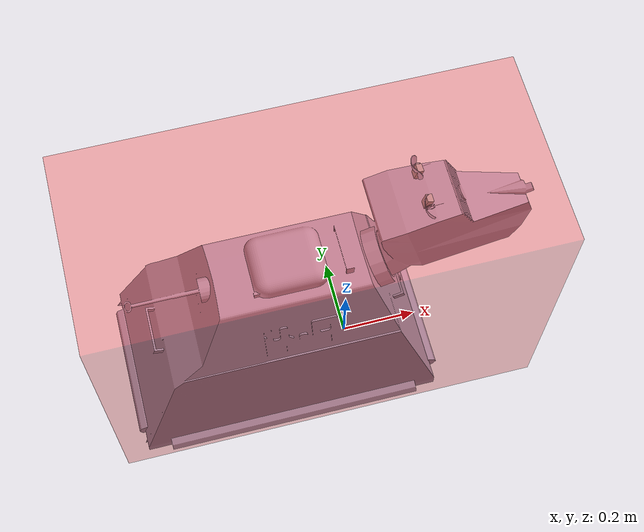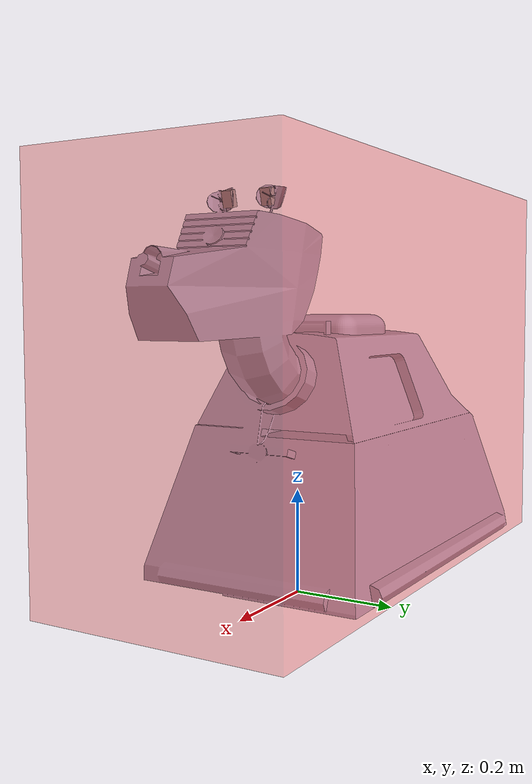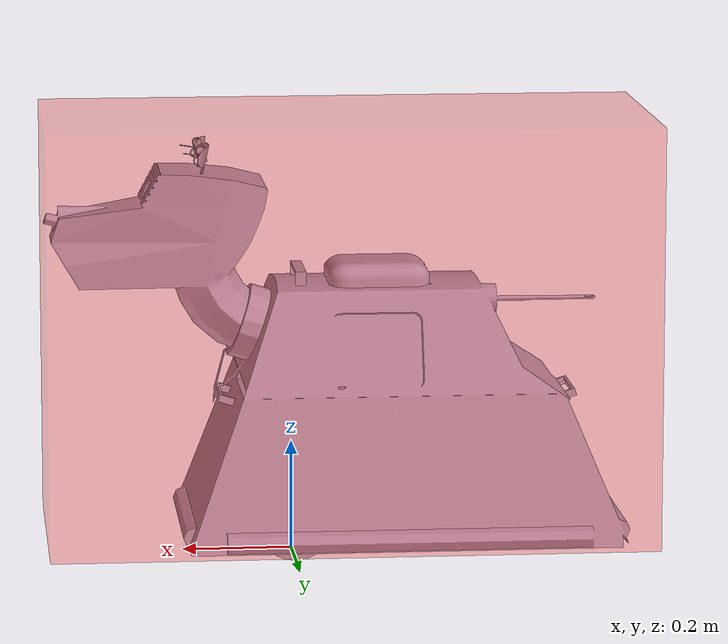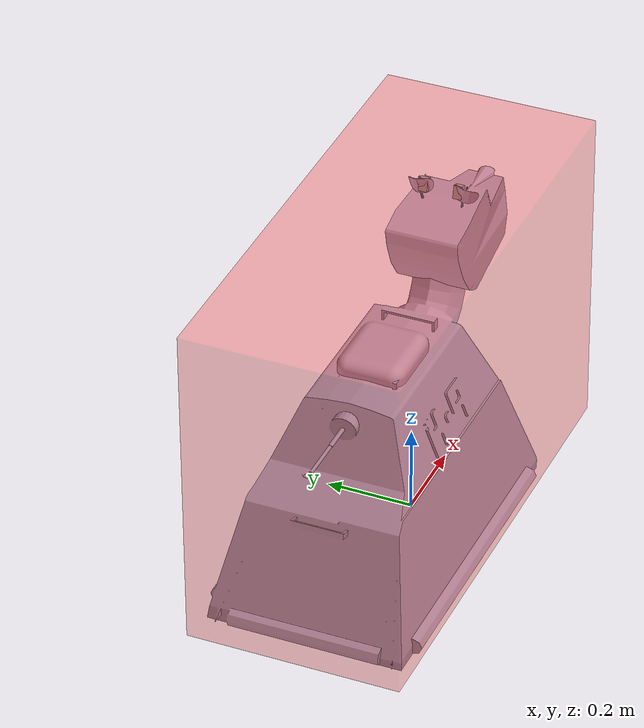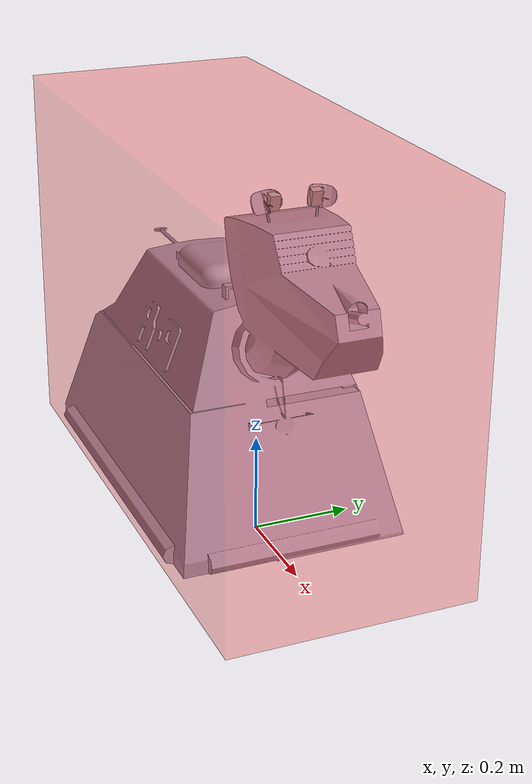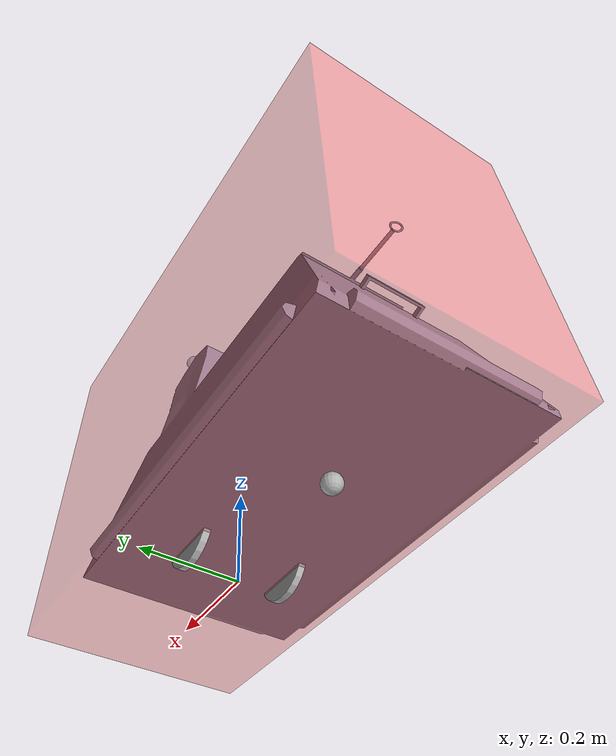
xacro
<?xml version="1.0" ?>
<robot name="k9_robot" xmlns:xacro="http://ros.org/wiki/xacro">

  <!--COLOURS-->
  <material name="K9 grey">
    <color rgba="0.5 0.5 1.0 0.3" />
  </material>

    <material name="K9 mesh">
    <color rgba="0.7 0.7 0.8 1.0" />
  </material>

  <material name="wheel grey">
    <color rgba="0.7 0.7 0.7 1.0" />
  </material>

  <material name="collision red">
    <color rgba="1.0 0.1 0.1 0.3" />
  </material>

  <!-- Define intertial property macros  -->
  <xacro:macro name="box_inertia" params="m x y z o_xyz o_rpy">
      <inertial>
          <mass value="${m}" />
          <origin xyz="${o_xyz}" rpy="${o_rpy}" />
          <inertia ixx="${(m/12) * (y*y + z*z)}" ixy="0" ixz="0"
                    iyy="${(m/12) * (x*x + z*z)}" iyz="0"
                    izz="${(m/12) * (x*x + y*y)}" />
      </inertial>
  </xacro:macro>

  <xacro:macro name="cylinder_inertia" params="m r l o_xyz o_rpy">
      <inertial>
          <mass value="${m}" />
          <origin xyz="${o_xyz}" rpy="${o_rpy}" />
          <inertia ixx="${(m/12) * (3*r*r + l*l)}" ixy="0" ixz="0"
                    iyy="${(m/12) * (3*r*r + l*l)}" iyz="0"
                    izz="${(m/2) * (r*r)}" />
      </inertial>
  </xacro:macro>

  <xacro:macro name="sphere_inertia" params="m r o_xyz o_rpy">
      <inertial>
          <mass value="${m}" />
          <origin xyz="${o_xyz}" rpy="${o_rpy}" />
          <inertia ixx="${(2/5) * m * r * r}" ixy="0" ixz="0"
                    iyy="${(2/5) * m * r * r}" iyz="0"
                    izz="${(2/5) * m * r * r}" />
      </inertial>
  </xacro:macro>

  <!--BASE-->
  <xacro:property name="base_width" value="0.49"/>
  <xacro:property name="base_length" value="1.1"/>
  <xacro:property name="base_height" value="0.77"/>
  <xacro:property name="base_x_offset" value="-0.1"/>
  <xacro:property name="base_clearance" value="0.035"/>

    <link name="base_link">
    <visual>
      <geometry>
        <box size="${base_length} ${base_width} ${base_height}"/>
      </geometry>
      <origin xyz="${base_x_offset} 0 ${base_clearance+(base_height/2)}" rpy="0 0 ${pi}"/>
      <material name="collision red"/>
    </visual>
    <collision>
      <origin xyz="-0.2 0.0 0.297" rpy="0.0 0.0 0.0"/>
      <geometry>
        <box size="0.89 ${base_width} 0.52"/>
      </geometry>
    </collision>
    <collision>
      <origin xyz="0.23 0.0 0.55" rpy="0.0 0.0 0.0"/>
      <geometry>
        <box size="0.43 0.18 0.15"/>
      </geometry>
    </collision>
    <collision>
      <origin xyz="0.15 0.0 0.65" rpy="0.0 0.0 0.0"/>
      <geometry>
        <box size="0.2 0.18 0.1"/>
      </geometry>
    </collision>
    <xacro:box_inertia m="27.0" x="${base_length*.8}" y="${base_width}" z="${base_height/2}" o_xyz="0 0 ${base_clearance+(base_height/4)}" o_rpy="0 0 0"/>
  </link>

  <!-- MESH -->
  <link name="mesh_link">
    <visual>
      <origin xyz="-0.58 1.905 0" rpy="0 0 ${pi}" />
      <geometry>
        <mesh filename="package://k9_description/urdf/k9.stl" scale = "0.01 0.01 0.01"/>
      </geometry>
    <material name="K9 mesh"/>
    </visual>
  </link>

  <joint name="base_mesh_joint" type="fixed">
    <parent link="base_link" />
    <child link="mesh_link"/>
    <origin xyz="0 0 0" rpy="0 0 0"/>
  </joint>

  <!--DRIVE WHEELS-->
  <xacro:property name="wheel_radius" value="0.06939"/>
  <xacro:property name="wheel_width" value="0.014"/>
  <xacro:property name="wheel_gap" value="0.2022"/>

  <link name="l_wheel_link">
    <visual>
      <geometry>
        <cylinder radius="${wheel_radius}" length="${wheel_width}"/>
      </geometry>
      <origin xyz="0 0 0" rpy="${pi/2} 0 0"/>
      <material name="wheel grey"/>
    </visual>
    <collision>
      <geometry>
        <cylinder radius="${wheel_radius}" length="${wheel_width}"/>
      </geometry>
      <origin xyz="0 0 0" rpy="${pi/2} 0 0"/>
    </collision>
    <xacro:cylinder_inertia m="0.4" r="${wheel_radius}" l="${wheel_width}" o_xyz="0 0 0" o_rpy="${pi/2} 0 0"/>
  </link>

  <joint name="base_l_wheel_joint" type="continuous">
    <parent link="base_link" />
    <child link="l_wheel_link"/>
    <origin xyz="0 ${wheel_gap/2} ${wheel_radius}" rpy="0 0 0"/>
    <axis xyz="0 1 0"/>
  </joint>

  <link name="r_wheel_link">
    <visual>
      <geometry>
        <cylinder radius="${wheel_radius}" length="${wheel_width}"/>
      </geometry>
      <origin xyz="0 0 0" rpy="${pi/2} 0 0"/>
      <material name="wheel grey"/>
    </visual>
    <collision>
      <geometry>
        <cylinder radius="${wheel_radius}" length="${wheel_width}"/>
      </geometry>
      <origin xyz="0 0 0" rpy="${pi/2} 0 0"/>
    </collision>
    <xacro:cylinder_inertia m="0.4" r="${wheel_radius}" l="${wheel_width}" o_xyz="0 0 0" o_rpy="${pi/2} 0 0"/>
  </link>

  <joint name="base_r_wheel_joint" type="continuous">
    <parent link="base_link" />
    <child link="r_wheel_link"/>
    <origin xyz="0 ${-wheel_gap/2} ${wheel_radius}" rpy="0 0 0"/>
    <axis xyz="0 1 0"/>
  </joint>

  <!--BASE FOOTPRINT-->
  <link name="base_footprint">
  </link>

  <joint name="base_joint" type="fixed">
    <parent link="base_footprint" />
    <child link="base_link"/>
    <origin xyz="0 0 0" rpy="0 0 0"/>
  </joint>

  <!--REAR CASTOR-->
  <xacro:property name="castor_x_offset" value="-0.298"/>
  <xacro:property name="castor_radius" value="0.02"/>

  <link name="castor_link">
    <visual>
      <geometry>
        <sphere radius="${castor_radius}"/>
      </geometry>
      <origin xyz="0 0 0" rpy="0 0 0"/>
      <material name="wheel grey"/>
    </visual>
    <collision>
      <geometry>
        <sphere radius="${castor_radius}"/>
      </geometry>
      <origin xyz="0 0 0" rpy="0 0 0"/>
    </collision>
    <xacro:sphere_inertia m="0.2" r="${castor_radius}" o_xyz ="0 0 0" o_rpy="0 0 0"/>
  </link>

 <joint name="castor_joint" type="fixed">
    <parent link="base_link" />
    <child link="castor_link"/>
    <origin xyz="${castor_x_offset} 0 ${castor_radius}" rpy="0 0 0"/>
  </joint>

  <!-- *********************** LIDAR ********************************  -->
  <link name="lidar_link"/>

  <joint name="lidar_joint" type="fixed">
    <parent link="base_link"/>
    <child link="lidar_link"/>
    <origin xyz="-0.2	0.0	0.555" rpy="0.0 0.0 0.0"/>
  </joint>

  <!-- ******************** EYE CAMERA ******************************  -->
  <link name="eyecam_link"/>

  <joint name="eyecam_joint" type="fixed">
    <parent link="base_link"/>
    <child link="eyecam_link"/>
    <origin xyz="0.266 0.0 0.67" rpy="0.0 0.0 0.0"/>
  </joint>

  <!-- ******************** 3D CAMERA ******************************  -->
  <link name="3dcam_link"/>

  <joint name="3dcam_joint" type="fixed">
    <parent link="base_link"/>
    <child link="3dcam_link"/>
    <origin xyz="0.13 0.0 0.255" rpy="0.0 0.0 0.0"/>
  </joint>

  <!-- ******************** LEFT EAR ******************************  -->

  <link name="l_ear_link">
    <visual>
      <geometry>
        <box size="0.015 0.02 0.03"/>
      </geometry>
      <origin xyz="0 0 0" rpy="0 0 0"/>
      <material name="wheel grey"/>
    </visual>
    <collision>
      <origin xyz="0 0 0" rpy="0 0 0"/>
      <geometry>
        <box size="0.015 0.02 0.03"/>
      </geometry>
    </collision>
    <collision>
      <origin xyz="0 0 0" rpy="0 0 0"/>
      <geometry>
        <box size="0.015 0.02 0.03"/>
      </geometry>
    </collision>
    <xacro:box_inertia m="0.05" x="0.015" y="0.02" z="0.03" o_xyz="0 0 0" o_rpy="0 0 0"/>
  </link>

  <joint name="l_ear_joint" type="revolute">
    <parent link="base_link"/>
    <child link="l_ear_link"/>
    <origin xyz="0.165 0.04 0.74" rpy="0.0 0.25 0.0"/>
    <axis xyz="0 0 1"/>
    <limit lower="-0.2" upper="0.6" effort="0.1" velocity="10"/>
    <dynamics friction="0.1" damping="0.1"/>
  </joint>

  <!-- ******************** RIGHT EAR ******************************  -->
  <link name="r_ear_link">
    <visual>
      <geometry>
        <box size="0.015 0.02 0.03"/>
      </geometry>
      <origin xyz="0 0 0" rpy="0 0 0"/>
      <material name="wheel grey"/>
    </visual>
    <collision>
      <origin xyz="0 0 0" rpy="0 0 0"/>
      <geometry>
        <box size="0.015 0.02 0.03"/>
      </geometry>
    </collision>
    <collision>
      <origin xyz="0 0 0" rpy="0 0 0"/>
      <geometry>
        <box size="0.015 0.02 0.03"/>
      </geometry>
    </collision>
    <xacro:box_inertia m="0.05" x="0.015" y="0.02" z="0.03" o_xyz="0 0 0" o_rpy="0 0 0"/>
  </link>

  <joint name="r_ear_joint" type="revolute">
    <parent link="base_link"/>
    <child link="r_ear_link"/>
    <origin xyz="0.165 -0.04 0.74" rpy="0.0 0.25 0.0"/>
    <axis xyz="0 0 1"/>
    <limit lower="-0.6" upper="0.2" effort="0.1" velocity="10"/>
    <dynamics friction="0.1" damping="0.1"/>
  </joint>

  <gazebo reference="castor_link">
      <mu1 value="0.001" />
      <mu2 value="0.001" />
  </gazebo>

  <gazebo reference="r_wheel_link">
      <mu1 value="200" />
      <mu2 value="200" />
      <kp value="10000000.0"/>
      <kd value="1.0"/>
      <minDepth>0.01</minDepth>
  </gazebo>

  <gazebo reference="l_wheel_link">
      <mu1 value="200" />
      <mu2 value="200" />
      <kp value="10000000.0"/>
      <kd value="1.0"/>
      <minDepth>0.01</minDepth>
  </gazebo>

  <gazebo>
  <plugin
      filename="gz-sim-diff-drive-system"
      name="gz::sim::systems::DiffDrive">
      <left_joint>base_l_wheel_joint</left_joint>
      <right_joint>base_r_wheel_joint</right_joint>
      <wheel_separation>"${wheel_gap}"</wheel_separation>
      <wheel_radius>"${wheel_radius}"</wheel_radius>
      <frame_id>odom</frame_id>
      <child_frame_id>base_footprint</child_frame_id>
  </plugin>
  </gazebo>

  <gazebo>
  <plugin
      filename="gz-sim-joint-state-publisher-system"
      name="gz::sim::systems::JointStatePublisher">
      <joint_name>base_l_wheel_joint</joint_name>
      <joint_name>base_r_wheel_joint</joint_name>
      <joint_name>l_ear_joint</joint_name>
      <joint_name>r_ear_joint</joint_name>
  </plugin>
  </gazebo>

</robot>
